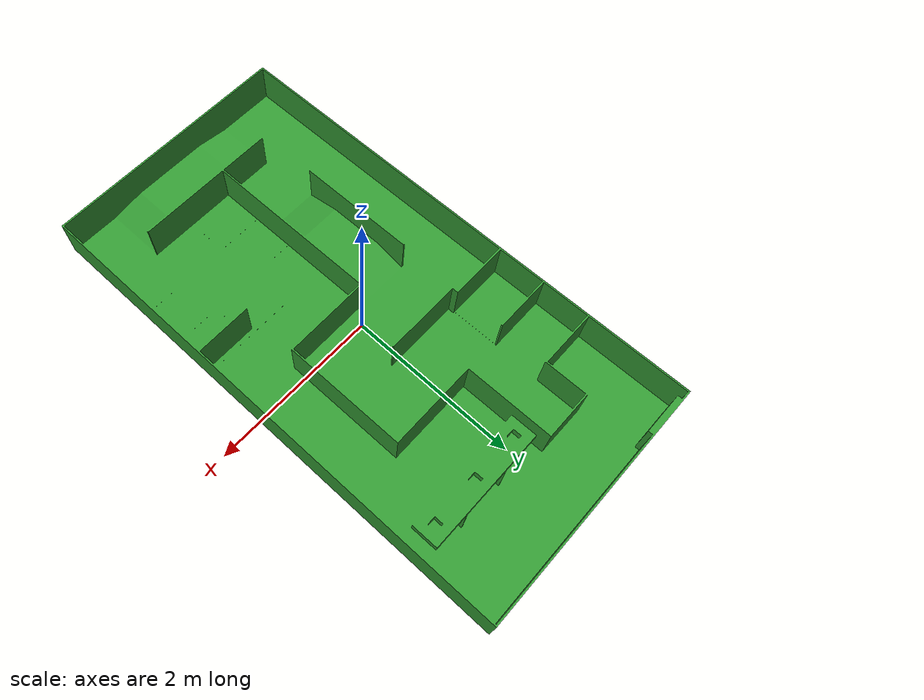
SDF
<?xml version="1.0" ?>
<sdf version="1.9">
  <world name="gamefield">

    <plugin
        filename="gz-sim-physics-system"
        name="gz::sim::systems::Physics">
    </plugin>
    <plugin
        filename="gz-sim-user-commands-system"
        name="gz::sim::systems::UserCommands">
    </plugin>
    <plugin
        filename="gz-sim-scene-broadcaster-system"
        name="gz::sim::systems::SceneBroadcaster">
    </plugin>
    <plugin
        filename="gz-sim-sensors-system"
        name="gz::sim::systems::Sensors">
        <render_engine>ogre2</render_engine>
    </plugin>
    <plugin
        filename="gz-sim-imu-system"
        name="gz::sim::systems::Imu">
    </plugin>
    <plugin
        filename="gz-sim-contact-system"
        name="gz::sim::systems::Contact">
    </plugin>

    <light type="directional" name="sun">
      <cast_shadows>true</cast_shadows>
      <pose>0 0 10 0 0 0</pose>
      <diffuse>0.8 0.8 0.8 1</diffuse>
      <specular>0.2 0.2 0.2 1</specular>
      <attenuation>
        <range>1000</range>
        <constant>0.9</constant>
        <linear>0.01</linear>
        <quadratic>0.001</quadratic>
      </attenuation>
      <direction>-0.5 0.1 -0.9</direction>
    </light>

    <include>
      <uri>model://gamefield</uri>
    </include>

  </world>
</sdf>

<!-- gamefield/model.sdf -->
<sdf version="1.9">
  <model name="gamefield">
    <static>true</static>
    <link name="link">
      <pose>0 0 0.6 3.14159 0 0</pose>
      <collision name="collision">
        <geometry>
          <mesh>
            <uri>model://gamefield/meshes/Gamefield.stl</uri>
            <scale>0.001 0.001 0.001</scale>
          </mesh>
        </geometry>
         <surface>
          <friction>
            <ode>
              <mu>1.0</mu> <!-- Adds wheel grip friction -->
              <mu2>1.0</mu2>
            </ode>
          </friction>
        </surface>
      </collision>

      <visual name="visual">
        <geometry>
          <mesh>
            <uri>model://gamefield/meshes/Gamefield.stl</uri>
            <scale>0.001 0.001 0.001</scale>
          </mesh>
        </geometry>
        <material>
          <ambient>0.2 0.6 0.2 1</ambient>
          <diffuse>0.2 0.6 0.2 1</diffuse>
          <specular>0.1 0.1 0.1 1</specular>
        </material>
      </visual>
    </link>
  </model>
</sdf>
